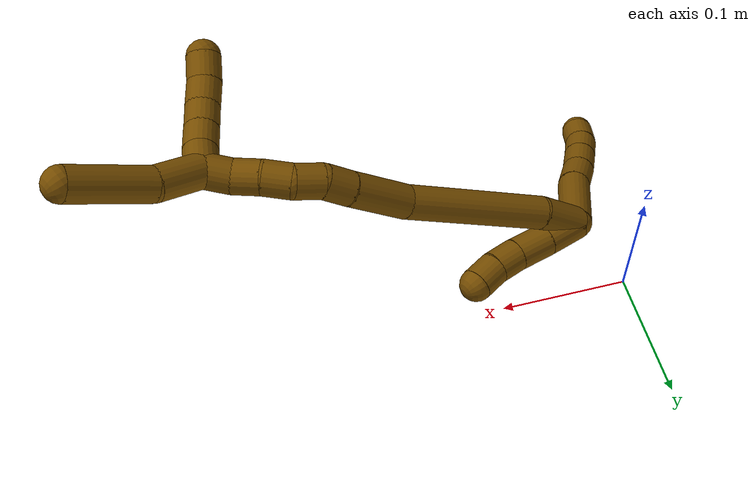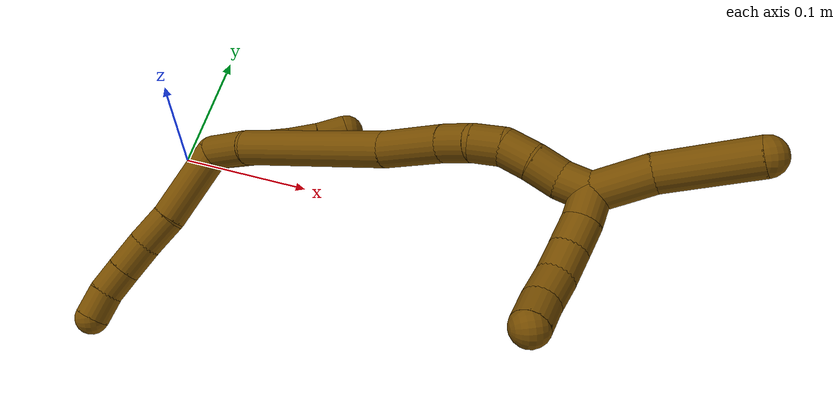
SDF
<sdf version="1.7">
 <world name="default">
  <model name="12">
   <static>0</static>
   <link name="12">
    <collision name="collision-cylinder-e_1_2_8">
     <pose>0.019743 0.009462 -0.018777 -2.67482 0.753933 -2.06008</pose>
     <geometry><cylinder><radius>0.0125</radius><length>0.057684</length></cylinder></geometry>
     <surface>
      <friction><ode><mu>1.16</mu><mu2>1.16</mu2><slip1>0</slip1><slip2>0</slip2></ode></friction>
      <contact><ode><kp>1e+06</kp><kd>1</kd><max_vel>0</max_vel><min_depth>0.001</min_depth></ode></contact>
     </surface>
    </collision>
    <visual name="visual-cylinder-e_1_2_8">
     <pose>0.019743 0.009462 -0.018777 -2.67482 0.753933 -2.06008</pose>
     <geometry><cylinder><radius>0.0125</radius><length>0.057684</length></cylinder></geometry>
     <material><ambient>0.466667 0.301961 0 1</ambient></material>
    </visual>
    <collision name="collision-cylinder-e_2_8_9">
     <pose>0.047008 0.023678 -0.047394 -2.69157 0.602842 -1.87234</pose>
     <geometry><cylinder><radius>0.0125</radius><length>0.026536</length></cylinder></geometry>
     <surface>
      <friction><ode><mu>1.16</mu><mu2>1.16</mu2><slip1>0</slip1><slip2>0</slip2></ode></friction>
      <contact><ode><kp>1e+06</kp><kd>1</kd><max_vel>0</max_vel><min_depth>0.001</min_depth></ode></contact>
     </surface>
    </collision>
    <visual name="visual-cylinder-e_2_8_9">
     <pose>0.047008 0.023678 -0.047394 -2.69157 0.602842 -1.87234</pose>
     <geometry><cylinder><radius>0.0125</radius><length>0.026536</length></cylinder></geometry>
     <material><ambient>0.466667 0.301961 0 1</ambient></material>
    </visual>
    <collision name="collision-cylinder-e_3_9_10">
     <pose>0.062202 0.032148 -0.06584 -2.73396 0.685862 -2.09208</pose>
     <geometry><cylinder><radius>0.0125</radius><length>0.024224</length></cylinder></geometry>
     <surface>
      <friction><ode><mu>1.16</mu><mu2>1.16</mu2><slip1>0</slip1><slip2>0</slip2></ode></friction>
      <contact><ode><kp>1e+06</kp><kd>1</kd><max_vel>0</max_vel><min_depth>0.001</min_depth></ode></contact>
     </surface>
    </collision>
    <visual name="visual-cylinder-e_3_9_10">
     <pose>0.062202 0.032148 -0.06584 -2.73396 0.685862 -2.09208</pose>
     <geometry><cylinder><radius>0.0125</radius><length>0.024224</length></cylinder></geometry>
     <material><ambient>0.466667 0.301961 0 1</ambient></material>
    </visual>
    <collision name="collision-cylinder-e_4_10_11">
     <pose>0.07657 0.039043 -0.081696 -2.72837 0.702129 -2.10196</pose>
     <geometry><cylinder><radius>0.0125</radius><length>0.020739</length></cylinder></geometry>
     <surface>
      <friction><ode><mu>1.16</mu><mu2>1.16</mu2><slip1>0</slip1><slip2>0</slip2></ode></friction>
      <contact><ode><kp>1e+06</kp><kd>1</kd><max_vel>0</max_vel><min_depth>0.001</min_depth></ode></contact>
     </surface>
    </collision>
    <visual name="visual-cylinder-e_4_10_11">
     <pose>0.07657 0.039043 -0.081696 -2.72837 0.702129 -2.10196</pose>
     <geometry><cylinder><radius>0.0125</radius><length>0.020739</length></cylinder></geometry>
     <material><ambient>0.466667 0.301961 0 1</ambient></material>
    </visual>
    <collision name="collision-cylinder-e_5_11_6">
     <pose>0.091372 0.045022 -0.094847 -2.6985 0.892524 -2.2616</pose>
     <geometry><cylinder><radius>0.0125</radius><length>0.020817</length></cylinder></geometry>
     <surface>
      <friction><ode><mu>1.16</mu><mu2>1.16</mu2><slip1>0</slip1><slip2>0</slip2></ode></friction>
      <contact><ode><kp>1e+06</kp><kd>1</kd><max_vel>0</max_vel><min_depth>0.001</min_depth></ode></contact>
     </surface>
    </collision>
    <visual name="visual-cylinder-e_5_11_6">
     <pose>0.091372 0.045022 -0.094847 -2.6985 0.892524 -2.2616</pose>
     <geometry><cylinder><radius>0.0125</radius><length>0.020817</length></cylinder></geometry>
     <material><ambient>0.466667 0.301961 0 1</ambient></material>
    </visual>
    <collision name="collision-cylinder-e_1_2_12">
     <pose>0.001024 -0.001881 0.015035 0.124452 0.067448 0.004204</pose>
     <geometry><cylinder><radius>0.0125</radius><length>0.030374</length></cylinder></geometry>
     <surface>
      <friction><ode><mu>1.16</mu><mu2>1.16</mu2><slip1>0</slip1><slip2>0</slip2></ode></friction>
      <contact><ode><kp>1e+06</kp><kd>1</kd><max_vel>0</max_vel><min_depth>0.001</min_depth></ode></contact>
     </surface>
    </collision>
    <visual name="visual-cylinder-e_1_2_12">
     <pose>0.001024 -0.001881 0.015035 0.124452 0.067448 0.004204</pose>
     <geometry><cylinder><radius>0.0125</radius><length>0.030374</length></cylinder></geometry>
     <material><ambient>0.466667 0.301961 0 1</ambient></material>
    </visual>
    <collision name="collision-cylinder-e_2_12_13">
     <pose>0.003292 -0.006049 0.043899 0.16389 0.088604 0.007282</pose>
     <geometry><cylinder><radius>0.0125</radius><length>0.028143</length></cylinder></geometry>
     <surface>
      <friction><ode><mu>1.16</mu><mu2>1.16</mu2><slip1>0</slip1><slip2>0</slip2></ode></friction>
      <contact><ode><kp>1e+06</kp><kd>1</kd><max_vel>0</max_vel><min_depth>0.001</min_depth></ode></contact>
     </surface>
    </collision>
    <visual name="visual-cylinder-e_2_12_13">
     <pose>0.003292 -0.006049 0.043899 0.16389 0.088604 0.007282</pose>
     <geometry><cylinder><radius>0.0125</radius><length>0.028143</length></cylinder></geometry>
     <material><ambient>0.466667 0.301961 0 1</ambient></material>
    </visual>
    <collision name="collision-cylinder-e_3_13_14">
     <pose>0.004515 -0.009938 0.068144 0.152683 -0.002086 -0.00016</pose>
     <geometry><cylinder><radius>0.0125</radius><length>0.021078</length></cylinder></geometry>
     <surface>
      <friction><ode><mu>1.16</mu><mu2>1.16</mu2><slip1>0</slip1><slip2>0</slip2></ode></friction>
      <contact><ode><kp>1e+06</kp><kd>1</kd><max_vel>0</max_vel><min_depth>0.001</min_depth></ode></contact>
     </surface>
    </collision>
    <visual name="visual-cylinder-e_3_13_14">
     <pose>0.004515 -0.009938 0.068144 0.152683 -0.002086 -0.00016</pose>
     <geometry><cylinder><radius>0.0125</radius><length>0.021078</length></cylinder></geometry>
     <material><ambient>0.466667 0.301961 0 1</ambient></material>
    </visual>
    <collision name="collision-cylinder-e_4_14_5">
     <pose>0.002966 -0.012371 0.088613 0.082355 -0.150276 -0.006203</pose>
     <geometry><cylinder><radius>0.0125</radius><length>0.020405</length></cylinder></geometry>
     <surface>
      <friction><ode><mu>1.16</mu><mu2>1.16</mu2><slip1>0</slip1><slip2>0</slip2></ode></friction>
      <contact><ode><kp>1e+06</kp><kd>1</kd><max_vel>0</max_vel><min_depth>0.001</min_depth></ode></contact>
     </surface>
    </collision>
    <visual name="visual-cylinder-e_4_14_5">
     <pose>0.002966 -0.012371 0.088613 0.082355 -0.150276 -0.006203</pose>
     <geometry><cylinder><radius>0.0125</radius><length>0.020405</length></cylinder></geometry>
     <material><ambient>0.466667 0.301961 0 1</ambient></material>
    </visual>
    <collision name="collision-cylinder-e_1_2_15">
     <pose>0.005328 -0.012207 0.01269 0.765978 0.293817 0.119092</pose>
     <geometry><cylinder><radius>0.0125</radius><length>0.036793</length></cylinder></geometry>
     <surface>
      <friction><ode><mu>1.16</mu><mu2>1.16</mu2><slip1>0</slip1><slip2>0</slip2></ode></friction>
      <contact><ode><kp>1e+06</kp><kd>1</kd><max_vel>0</max_vel><min_depth>0.001</min_depth></ode></contact>
     </surface>
    </collision>
    <visual name="visual-cylinder-e_1_2_15">
     <pose>0.005328 -0.012207 0.01269 0.765978 0.293817 0.119092</pose>
     <geometry><cylinder><radius>0.0125</radius><length>0.036793</length></cylinder></geometry>
     <material><ambient>0.466667 0.301961 0 1</ambient></material>
    </visual>
    <collision name="collision-cylinder-e_2_15_16">
     <pose>0.030239 -0.052181 0.070536 0.551331 0.353885 0.101074</pose>
     <geometry><cylinder><radius>0.0125</radius><length>0.113024</length></cylinder></geometry>
     <surface>
      <friction><ode><mu>1.16</mu><mu2>1.16</mu2><slip1>0</slip1><slip2>0</slip2></ode></friction>
      <contact><ode><kp>1e+06</kp><kd>1</kd><max_vel>0</max_vel><min_depth>0.001</min_depth></ode></contact>
     </surface>
    </collision>
    <visual name="visual-cylinder-e_2_15_16">
     <pose>0.030239 -0.052181 0.070536 0.551331 0.353885 0.101074</pose>
     <geometry><cylinder><radius>0.0125</radius><length>0.113024</length></cylinder></geometry>
     <material><ambient>0.466667 0.301961 0 1</ambient></material>
    </visual>
    <collision name="collision-cylinder-e_3_16_17">
     <pose>0.056907 -0.094918 0.132431 0.729603 0.305568 0.117476</pose>
     <geometry><cylinder><radius>0.0125</radius><length>0.047094</length></cylinder></geometry>
     <surface>
      <friction><ode><mu>1.16</mu><mu2>1.16</mu2><slip1>0</slip1><slip2>0</slip2></ode></friction>
      <contact><ode><kp>1e+06</kp><kd>1</kd><max_vel>0</max_vel><min_depth>0.001</min_depth></ode></contact>
     </surface>
    </collision>
    <visual name="visual-cylinder-e_3_16_17">
     <pose>0.056907 -0.094918 0.132431 0.729603 0.305568 0.117476</pose>
     <geometry><cylinder><radius>0.0125</radius><length>0.047094</length></cylinder></geometry>
     <material><ambient>0.466667 0.301961 0 1</ambient></material>
    </visual>
    <collision name="collision-cylinder-e_4_17_18">
     <pose>0.067944 -0.116544 0.156465 0.73979 0.380739 0.149161</pose>
     <geometry><cylinder><radius>0.0125</radius><length>0.021275</length></cylinder></geometry>
     <surface>
      <friction><ode><mu>1.16</mu><mu2>1.16</mu2><slip1>0</slip1><slip2>0</slip2></ode></friction>
      <contact><ode><kp>1e+06</kp><kd>1</kd><max_vel>0</max_vel><min_depth>0.001</min_depth></ode></contact>
     </surface>
    </collision>
    <visual name="visual-cylinder-e_4_17_18">
     <pose>0.067944 -0.116544 0.156465 0.73979 0.380739 0.149161</pose>
     <geometry><cylinder><radius>0.0125</radius><length>0.021275</length></cylinder></geometry>
     <material><ambient>0.466667 0.301961 0 1</ambient></material>
    </visual>
    <collision name="collision-cylinder-e_5_18_19">
     <pose>0.076114 -0.126784 0.17258 0.385788 0.416966 0.082597</pose>
     <geometry><cylinder><radius>0.0125</radius><length>0.020824</length></cylinder></geometry>
     <surface>
      <friction><ode><mu>1.16</mu><mu2>1.16</mu2><slip1>0</slip1><slip2>0</slip2></ode></friction>
      <contact><ode><kp>1e+06</kp><kd>1</kd><max_vel>0</max_vel><min_depth>0.001</min_depth></ode></contact>
     </surface>
    </collision>
    <visual name="visual-cylinder-e_5_18_19">
     <pose>0.076114 -0.126784 0.17258 0.385788 0.416966 0.082597</pose>
     <geometry><cylinder><radius>0.0125</radius><length>0.020824</length></cylinder></geometry>
     <material><ambient>0.466667 0.301961 0 1</ambient></material>
    </visual>
    <collision name="collision-cylinder-e_6_19_20">
     <pose>0.087333 -0.132554 0.18847 0.300159 0.757812 0.120267</pose>
     <geometry><cylinder><radius>0.0125</radius><length>0.020377</length></cylinder></geometry>
     <surface>
      <friction><ode><mu>1.16</mu><mu2>1.16</mu2><slip1>0</slip1><slip2>0</slip2></ode></friction>
      <contact><ode><kp>1e+06</kp><kd>1</kd><max_vel>0</max_vel><min_depth>0.001</min_depth></ode></contact>
     </surface>
    </collision>
    <visual name="visual-cylinder-e_6_19_20">
     <pose>0.087333 -0.132554 0.18847 0.300159 0.757812 0.120267</pose>
     <geometry><cylinder><radius>0.0125</radius><length>0.020377</length></cylinder></geometry>
     <material><ambient>0.466667 0.301961 0 1</ambient></material>
    </visual>
    <collision name="collision-cylinder-e_7_20_21">
     <pose>0.101544 -0.135402 0.202687 0.092054 0.787437 0.038262</pose>
     <geometry><cylinder><radius>0.0125</radius><length>0.020346</length></cylinder></geometry>
     <surface>
      <friction><ode><mu>1.16</mu><mu2>1.16</mu2><slip1>0</slip1><slip2>0</slip2></ode></friction>
      <contact><ode><kp>1e+06</kp><kd>1</kd><max_vel>0</max_vel><min_depth>0.001</min_depth></ode></contact>
     </surface>
    </collision>
    <visual name="visual-cylinder-e_7_20_21">
     <pose>0.101544 -0.135402 0.202687 0.092054 0.787437 0.038262</pose>
     <geometry><cylinder><radius>0.0125</radius><length>0.020346</length></cylinder></geometry>
     <material><ambient>0.466667 0.301961 0 1</ambient></material>
    </visual>
    <collision name="collision-cylinder-e_8_21_1">
     <pose>0.11523 -0.13956 0.2168 0.465475 0.693462 0.170876</pose>
     <geometry><cylinder><radius>0.0125</radius><length>0.020267</length></cylinder></geometry>
     <surface>
      <friction><ode><mu>1.16</mu><mu2>1.16</mu2><slip1>0</slip1><slip2>0</slip2></ode></friction>
      <contact><ode><kp>1e+06</kp><kd>1</kd><max_vel>0</max_vel><min_depth>0.001</min_depth></ode></contact>
     </surface>
    </collision>
    <visual name="visual-cylinder-e_8_21_1">
     <pose>0.11523 -0.13956 0.2168 0.465475 0.693462 0.170876</pose>
     <geometry><cylinder><radius>0.0125</radius><length>0.020267</length></cylinder></geometry>
     <material><ambient>0.466667 0.301961 0 1</ambient></material>
    </visual>
    <collision name="collision-cylinder-e_1_1_22">
     <pose>0.130369 -0.141985 0.218883 -2.92515 1.04749 -2.7697</pose>
     <geometry><cylinder><radius>0.0125</radius><length>0.02</length></cylinder></geometry>
     <surface>
      <friction><ode><mu>1.16</mu><mu2>1.16</mu2><slip1>0</slip1><slip2>0</slip2></ode></friction>
      <contact><ode><kp>1e+06</kp><kd>1</kd><max_vel>0</max_vel><min_depth>0.001</min_depth></ode></contact>
     </surface>
    </collision>
    <visual name="visual-cylinder-e_1_1_22">
     <pose>0.130369 -0.141985 0.218883 -2.92515 1.04749 -2.7697</pose>
     <geometry><cylinder><radius>0.0125</radius><length>0.02</length></cylinder></geometry>
     <material><ambient>0.466667 0.301961 0 1</ambient></material>
    </visual>
    <collision name="collision-cylinder-e_2_22_23">
     <pose>0.147071 -0.141246 0.208066 3.08525 0.934159 3.02996</pose>
     <geometry><cylinder><radius>0.0125</radius><length>0.02</length></cylinder></geometry>
     <surface>
      <friction><ode><mu>1.16</mu><mu2>1.16</mu2><slip1>0</slip1><slip2>0</slip2></ode></friction>
      <contact><ode><kp>1e+06</kp><kd>1</kd><max_vel>0</max_vel><min_depth>0.001</min_depth></ode></contact>
     </surface>
    </collision>
    <visual name="visual-cylinder-e_2_22_23">
     <pose>0.147071 -0.141246 0.208066 3.08525 0.934159 3.02996</pose>
     <geometry><cylinder><radius>0.0125</radius><length>0.02</length></cylinder></geometry>
     <material><ambient>0.466667 0.301961 0 1</ambient></material>
    </visual>
    <collision name="collision-cylinder-e_3_23_24">
     <pose>0.163081 -0.142399 0.196144 3.00577 0.922016 2.86942</pose>
     <geometry><cylinder><radius>0.0125</radius><length>0.02</length></cylinder></geometry>
     <surface>
      <friction><ode><mu>1.16</mu><mu2>1.16</mu2><slip1>0</slip1><slip2>0</slip2></ode></friction>
      <contact><ode><kp>1e+06</kp><kd>1</kd><max_vel>0</max_vel><min_depth>0.001</min_depth></ode></contact>
     </surface>
    </collision>
    <visual name="visual-cylinder-e_3_23_24">
     <pose>0.163081 -0.142399 0.196144 3.00577 0.922016 2.86942</pose>
     <geometry><cylinder><radius>0.0125</radius><length>0.02</length></cylinder></geometry>
     <material><ambient>0.466667 0.301961 0 1</ambient></material>
    </visual>
    <collision name="collision-cylinder-e_4_24_25">
     <pose>0.178294 -0.145865 0.183794 2.74724 0.810327 2.2698</pose>
     <geometry><cylinder><radius>0.0125</radius><length>0.02</length></cylinder></geometry>
     <surface>
      <friction><ode><mu>1.16</mu><mu2>1.16</mu2><slip1>0</slip1><slip2>0</slip2></ode></friction>
      <contact><ode><kp>1e+06</kp><kd>1</kd><max_vel>0</max_vel><min_depth>0.001</min_depth></ode></contact>
     </surface>
    </collision>
    <visual name="visual-cylinder-e_4_24_25">
     <pose>0.178294 -0.145865 0.183794 2.74724 0.810327 2.2698</pose>
     <geometry><cylinder><radius>0.0125</radius><length>0.02</length></cylinder></geometry>
     <material><ambient>0.466667 0.301961 0 1</ambient></material>
    </visual>
    <collision name="collision-cylinder-e_5_25_4">
     <pose>0.192822 -0.152451 0.171822 2.52951 0.81584 1.87896</pose>
     <geometry><cylinder><radius>0.0125</radius><length>0.02</length></cylinder></geometry>
     <surface>
      <friction><ode><mu>1.16</mu><mu2>1.16</mu2><slip1>0</slip1><slip2>0</slip2></ode></friction>
      <contact><ode><kp>1e+06</kp><kd>1</kd><max_vel>0</max_vel><min_depth>0.001</min_depth></ode></contact>
     </surface>
    </collision>
    <visual name="visual-cylinder-e_5_25_4">
     <pose>0.192822 -0.152451 0.171822 2.52951 0.81584 1.87896</pose>
     <geometry><cylinder><radius>0.0125</radius><length>0.02</length></cylinder></geometry>
     <material><ambient>0.466667 0.301961 0 1</ambient></material>
    </visual>
    <collision name="collision-cylinder-e_1_1_26">
     <pose>0.120986 -0.150615 0.241046 0.412193 -0.038211 -0.007989</pose>
     <geometry><cylinder><radius>0.0125</radius><length>0.037752</length></cylinder></geometry>
     <surface>
      <friction><ode><mu>1.16</mu><mu2>1.16</mu2><slip1>0</slip1><slip2>0</slip2></ode></friction>
      <contact><ode><kp>1e+06</kp><kd>1</kd><max_vel>0</max_vel><min_depth>0.001</min_depth></ode></contact>
     </surface>
    </collision>
    <visual name="visual-cylinder-e_1_1_26">
     <pose>0.120986 -0.150615 0.241046 0.412193 -0.038211 -0.007989</pose>
     <geometry><cylinder><radius>0.0125</radius><length>0.037752</length></cylinder></geometry>
     <material><ambient>0.466667 0.301961 0 1</ambient></material>
    </visual>
    <collision name="collision-cylinder-e_2_26_3">
     <pose>0.125792 -0.174787 0.284059 0.573411 0.178544 0.052768</pose>
     <geometry><cylinder><radius>0.0125</radius><length>0.062248</length></cylinder></geometry>
     <surface>
      <friction><ode><mu>1.16</mu><mu2>1.16</mu2><slip1>0</slip1><slip2>0</slip2></ode></friction>
      <contact><ode><kp>1e+06</kp><kd>1</kd><max_vel>0</max_vel><min_depth>0.001</min_depth></ode></contact>
     </surface>
    </collision>
    <visual name="visual-cylinder-e_2_26_3">
     <pose>0.125792 -0.174787 0.284059 0.573411 0.178544 0.052768</pose>
     <geometry><cylinder><radius>0.0125</radius><length>0.062248</length></cylinder></geometry>
     <material><ambient>0.466667 0.301961 0 1</ambient></material>
    </visual>
    <collision name="collision-sphere-3">
     <pose>0.13132 -0.191404 0.309789 0 -0 0</pose>
     <geometry><sphere><radius>0.0125</radius></sphere></geometry>
     <surface>
      <friction><ode><mu>1.16</mu><mu2>1.16</mu2><slip1>0</slip1><slip2>0</slip2></ode></friction>
      <contact><ode><kp>1e+06</kp><kd>1</kd><max_vel>0</max_vel><min_depth>0.001</min_depth></ode></contact>
     </surface>
    </collision>
    <visual name="visual-sphere-3">
     <pose>0.13132 -0.191404 0.309789 0 -0 0</pose>
     <geometry><sphere><radius>0.0125</radius></sphere></geometry>
     <material><ambient>0.466667 0.301961 0 1</ambient></material>
    </visual>
    <collision name="collision-sphere-26">
     <pose>0.120265 -0.158171 0.258329 0 -0 0</pose>
     <geometry><sphere><radius>0.0125</radius></sphere></geometry>
     <surface>
      <friction><ode><mu>1.16</mu><mu2>1.16</mu2><slip1>0</slip1><slip2>0</slip2></ode></friction>
      <contact><ode><kp>1e+06</kp><kd>1</kd><max_vel>0</max_vel><min_depth>0.001</min_depth></ode></contact>
     </surface>
    </collision>
    <visual name="visual-sphere-26">
     <pose>0.120265 -0.158171 0.258329 0 -0 0</pose>
     <geometry><sphere><radius>0.0125</radius></sphere></geometry>
     <material><ambient>0.466667 0.301961 0 1</ambient></material>
    </visual>
    <collision name="collision-sphere-4">
     <pose>0.200105 -0.156388 0.166214 0 -0 0</pose>
     <geometry><sphere><radius>0.0125</radius></sphere></geometry>
     <surface>
      <friction><ode><mu>1.16</mu><mu2>1.16</mu2><slip1>0</slip1><slip2>0</slip2></ode></friction>
      <contact><ode><kp>1e+06</kp><kd>1</kd><max_vel>0</max_vel><min_depth>0.001</min_depth></ode></contact>
     </surface>
    </collision>
    <visual name="visual-sphere-4">
     <pose>0.200105 -0.156388 0.166214 0 -0 0</pose>
     <geometry><sphere><radius>0.0125</radius></sphere></geometry>
     <material><ambient>0.466667 0.301961 0 1</ambient></material>
    </visual>
    <collision name="collision-sphere-25">
     <pose>0.185539 -0.148514 0.177431 0 -0 0</pose>
     <geometry><sphere><radius>0.0125</radius></sphere></geometry>
     <surface>
      <friction><ode><mu>1.16</mu><mu2>1.16</mu2><slip1>0</slip1><slip2>0</slip2></ode></friction>
      <contact><ode><kp>1e+06</kp><kd>1</kd><max_vel>0</max_vel><min_depth>0.001</min_depth></ode></contact>
     </surface>
    </collision>
    <visual name="visual-sphere-25">
     <pose>0.185539 -0.148514 0.177431 0 -0 0</pose>
     <geometry><sphere><radius>0.0125</radius></sphere></geometry>
     <material><ambient>0.466667 0.301961 0 1</ambient></material>
    </visual>
    <collision name="collision-sphere-24">
     <pose>0.171049 -0.143217 0.190158 0 -0 0</pose>
     <geometry><sphere><radius>0.0125</radius></sphere></geometry>
     <surface>
      <friction><ode><mu>1.16</mu><mu2>1.16</mu2><slip1>0</slip1><slip2>0</slip2></ode></friction>
      <contact><ode><kp>1e+06</kp><kd>1</kd><max_vel>0</max_vel><min_depth>0.001</min_depth></ode></contact>
     </surface>
    </collision>
    <visual name="visual-sphere-24">
     <pose>0.171049 -0.143217 0.190158 0 -0 0</pose>
     <geometry><sphere><radius>0.0125</radius></sphere></geometry>
     <material><ambient>0.466667 0.301961 0 1</ambient></material>
    </visual>
    <collision name="collision-sphere-23">
     <pose>0.155112 -0.141581 0.202131 0 -0 0</pose>
     <geometry><sphere><radius>0.0125</radius></sphere></geometry>
     <surface>
      <friction><ode><mu>1.16</mu><mu2>1.16</mu2><slip1>0</slip1><slip2>0</slip2></ode></friction>
      <contact><ode><kp>1e+06</kp><kd>1</kd><max_vel>0</max_vel><min_depth>0.001</min_depth></ode></contact>
     </surface>
    </collision>
    <visual name="visual-sphere-23">
     <pose>0.155112 -0.141581 0.202131 0 -0 0</pose>
     <geometry><sphere><radius>0.0125</radius></sphere></geometry>
     <material><ambient>0.466667 0.301961 0 1</ambient></material>
    </visual>
    <collision name="collision-sphere-22">
     <pose>0.13903 -0.140911 0.214002 0 -0 0</pose>
     <geometry><sphere><radius>0.0125</radius></sphere></geometry>
     <surface>
      <friction><ode><mu>1.16</mu><mu2>1.16</mu2><slip1>0</slip1><slip2>0</slip2></ode></friction>
      <contact><ode><kp>1e+06</kp><kd>1</kd><max_vel>0</max_vel><min_depth>0.001</min_depth></ode></contact>
     </surface>
    </collision>
    <visual name="visual-sphere-22">
     <pose>0.13903 -0.140911 0.214002 0 -0 0</pose>
     <geometry><sphere><radius>0.0125</radius></sphere></geometry>
     <material><ambient>0.466667 0.301961 0 1</ambient></material>
    </visual>
    <collision name="collision-sphere-1">
     <pose>0.121707 -0.143058 0.223764 0 -0 0</pose>
     <geometry><sphere><radius>0.0125</radius></sphere></geometry>
     <surface>
      <friction><ode><mu>1.16</mu><mu2>1.16</mu2><slip1>0</slip1><slip2>0</slip2></ode></friction>
      <contact><ode><kp>1e+06</kp><kd>1</kd><max_vel>0</max_vel><min_depth>0.001</min_depth></ode></contact>
     </surface>
    </collision>
    <visual name="visual-sphere-1">
     <pose>0.121707 -0.143058 0.223764 0 -0 0</pose>
     <geometry><sphere><radius>0.0125</radius></sphere></geometry>
     <material><ambient>0.466667 0.301961 0 1</ambient></material>
    </visual>
    <collision name="collision-sphere-21">
     <pose>0.108752 -0.136062 0.209836 0 -0 0</pose>
     <geometry><sphere><radius>0.0125</radius></sphere></geometry>
     <surface>
      <friction><ode><mu>1.16</mu><mu2>1.16</mu2><slip1>0</slip1><slip2>0</slip2></ode></friction>
      <contact><ode><kp>1e+06</kp><kd>1</kd><max_vel>0</max_vel><min_depth>0.001</min_depth></ode></contact>
     </surface>
    </collision>
    <visual name="visual-sphere-21">
     <pose>0.108752 -0.136062 0.209836 0 -0 0</pose>
     <geometry><sphere><radius>0.0125</radius></sphere></geometry>
     <material><ambient>0.466667 0.301961 0 1</ambient></material>
    </visual>
    <collision name="collision-sphere-6">
     <pose>0.099476 0.047822 -0.100747 0 -0 0</pose>
     <geometry><sphere><radius>0.0125</radius></sphere></geometry>
     <surface>
      <friction><ode><mu>1.16</mu><mu2>1.16</mu2><slip1>0</slip1><slip2>0</slip2></ode></friction>
      <contact><ode><kp>1e+06</kp><kd>1</kd><max_vel>0</max_vel><min_depth>0.001</min_depth></ode></contact>
     </surface>
    </collision>
    <visual name="visual-sphere-6">
     <pose>0.099476 0.047822 -0.100747 0 -0 0</pose>
     <geometry><sphere><radius>0.0125</radius></sphere></geometry>
     <material><ambient>0.466667 0.301961 0 1</ambient></material>
    </visual>
    <collision name="collision-sphere-11">
     <pose>0.083267 0.042222 -0.088946 0 -0 0</pose>
     <geometry><sphere><radius>0.0125</radius></sphere></geometry>
     <surface>
      <friction><ode><mu>1.16</mu><mu2>1.16</mu2><slip1>0</slip1><slip2>0</slip2></ode></friction>
      <contact><ode><kp>1e+06</kp><kd>1</kd><max_vel>0</max_vel><min_depth>0.001</min_depth></ode></contact>
     </surface>
    </collision>
    <visual name="visual-sphere-11">
     <pose>0.083267 0.042222 -0.088946 0 -0 0</pose>
     <geometry><sphere><radius>0.0125</radius></sphere></geometry>
     <material><ambient>0.466667 0.301961 0 1</ambient></material>
    </visual>
    <collision name="collision-sphere-10">
     <pose>0.069873 0.035863 -0.074445 0 -0 0</pose>
     <geometry><sphere><radius>0.0125</radius></sphere></geometry>
     <surface>
      <friction><ode><mu>1.16</mu><mu2>1.16</mu2><slip1>0</slip1><slip2>0</slip2></ode></friction>
      <contact><ode><kp>1e+06</kp><kd>1</kd><max_vel>0</max_vel><min_depth>0.001</min_depth></ode></contact>
     </surface>
    </collision>
    <visual name="visual-sphere-10">
     <pose>0.069873 0.035863 -0.074445 0 -0 0</pose>
     <geometry><sphere><radius>0.0125</radius></sphere></geometry>
     <material><ambient>0.466667 0.301961 0 1</ambient></material>
    </visual>
    <collision name="collision-sphere-9">
     <pose>0.054531 0.028432 -0.057235 0 -0 0</pose>
     <geometry><sphere><radius>0.0125</radius></sphere></geometry>
     <surface>
      <friction><ode><mu>1.16</mu><mu2>1.16</mu2><slip1>0</slip1><slip2>0</slip2></ode></friction>
      <contact><ode><kp>1e+06</kp><kd>1</kd><max_vel>0</max_vel><min_depth>0.001</min_depth></ode></contact>
     </surface>
    </collision>
    <visual name="visual-sphere-9">
     <pose>0.054531 0.028432 -0.057235 0 -0 0</pose>
     <geometry><sphere><radius>0.0125</radius></sphere></geometry>
     <material><ambient>0.466667 0.301961 0 1</ambient></material>
    </visual>
    <collision name="collision-sphere-2">
     <geometry><sphere><radius>0.0125</radius></sphere></geometry>
     <surface>
      <friction><ode><mu>1.16</mu><mu2>1.16</mu2><slip1>0</slip1><slip2>0</slip2></ode></friction>
      <contact><ode><kp>1e+06</kp><kd>1</kd><max_vel>0</max_vel><min_depth>0.001</min_depth></ode></contact>
     </surface>
    </collision>
    <visual name="visual-sphere-2">
     <geometry><sphere><radius>0.0125</radius></sphere></geometry>
     <material><ambient>0.466667 0.301961 0 1</ambient></material>
    </visual>
    <collision name="collision-sphere-19">
     <pose>0.08033 -0.130366 0.1814 0 -0 0</pose>
     <geometry><sphere><radius>0.0125</radius></sphere></geometry>
     <surface>
      <friction><ode><mu>1.16</mu><mu2>1.16</mu2><slip1>0</slip1><slip2>0</slip2></ode></friction>
      <contact><ode><kp>1e+06</kp><kd>1</kd><max_vel>0</max_vel><min_depth>0.001</min_depth></ode></contact>
     </surface>
    </collision>
    <visual name="visual-sphere-19">
     <pose>0.08033 -0.130366 0.1814 0 -0 0</pose>
     <geometry><sphere><radius>0.0125</radius></sphere></geometry>
     <material><ambient>0.466667 0.301961 0 1</ambient></material>
    </visual>
    <collision name="collision-sphere-8">
     <pose>0.039485 0.018924 -0.037553 0 -0 0</pose>
     <geometry><sphere><radius>0.0125</radius></sphere></geometry>
     <surface>
      <friction><ode><mu>1.16</mu><mu2>1.16</mu2><slip1>0</slip1><slip2>0</slip2></ode></friction>
      <contact><ode><kp>1e+06</kp><kd>1</kd><max_vel>0</max_vel><min_depth>0.001</min_depth></ode></contact>
     </surface>
    </collision>
    <visual name="visual-sphere-8">
     <pose>0.039485 0.018924 -0.037553 0 -0 0</pose>
     <geometry><sphere><radius>0.0125</radius></sphere></geometry>
     <material><ambient>0.466667 0.301961 0 1</ambient></material>
    </visual>
    <collision name="collision-sphere-12">
     <pose>0.002047 -0.003762 0.03007 0 -0 0</pose>
     <geometry><sphere><radius>0.0125</radius></sphere></geometry>
     <surface>
      <friction><ode><mu>1.16</mu><mu2>1.16</mu2><slip1>0</slip1><slip2>0</slip2></ode></friction>
      <contact><ode><kp>1e+06</kp><kd>1</kd><max_vel>0</max_vel><min_depth>0.001</min_depth></ode></contact>
     </surface>
    </collision>
    <visual name="visual-sphere-12">
     <pose>0.002047 -0.003762 0.03007 0 -0 0</pose>
     <geometry><sphere><radius>0.0125</radius></sphere></geometry>
     <material><ambient>0.466667 0.301961 0 1</ambient></material>
    </visual>
    <collision name="collision-sphere-13">
     <pose>0.004537 -0.008336 0.057728 0 -0 0</pose>
     <geometry><sphere><radius>0.0125</radius></sphere></geometry>
     <surface>
      <friction><ode><mu>1.16</mu><mu2>1.16</mu2><slip1>0</slip1><slip2>0</slip2></ode></friction>
      <contact><ode><kp>1e+06</kp><kd>1</kd><max_vel>0</max_vel><min_depth>0.001</min_depth></ode></contact>
     </surface>
    </collision>
    <visual name="visual-sphere-13">
     <pose>0.004537 -0.008336 0.057728 0 -0 0</pose>
     <geometry><sphere><radius>0.0125</radius></sphere></geometry>
     <material><ambient>0.466667 0.301961 0 1</ambient></material>
    </visual>
    <collision name="collision-sphere-14">
     <pose>0.004493 -0.011541 0.07856 0 -0 0</pose>
     <geometry><sphere><radius>0.0125</radius></sphere></geometry>
     <surface>
      <friction><ode><mu>1.16</mu><mu2>1.16</mu2><slip1>0</slip1><slip2>0</slip2></ode></friction>
      <contact><ode><kp>1e+06</kp><kd>1</kd><max_vel>0</max_vel><min_depth>0.001</min_depth></ode></contact>
     </surface>
    </collision>
    <visual name="visual-sphere-14">
     <pose>0.004493 -0.011541 0.07856 0 -0 0</pose>
     <geometry><sphere><radius>0.0125</radius></sphere></geometry>
     <material><ambient>0.466667 0.301961 0 1</ambient></material>
    </visual>
    <collision name="collision-sphere-5">
     <pose>0.001439 -0.013201 0.098667 0 -0 0</pose>
     <geometry><sphere><radius>0.0125</radius></sphere></geometry>
     <surface>
      <friction><ode><mu>1.16</mu><mu2>1.16</mu2><slip1>0</slip1><slip2>0</slip2></ode></friction>
      <contact><ode><kp>1e+06</kp><kd>1</kd><max_vel>0</max_vel><min_depth>0.001</min_depth></ode></contact>
     </surface>
    </collision>
    <visual name="visual-sphere-5">
     <pose>0.001439 -0.013201 0.098667 0 -0 0</pose>
     <geometry><sphere><radius>0.0125</radius></sphere></geometry>
     <material><ambient>0.466667 0.301961 0 1</ambient></material>
    </visual>
    <collision name="collision-sphere-15">
     <pose>0.010656 -0.024413 0.02538 0 -0 0</pose>
     <geometry><sphere><radius>0.0125</radius></sphere></geometry>
     <surface>
      <friction><ode><mu>1.16</mu><mu2>1.16</mu2><slip1>0</slip1><slip2>0</slip2></ode></friction>
      <contact><ode><kp>1e+06</kp><kd>1</kd><max_vel>0</max_vel><min_depth>0.001</min_depth></ode></contact>
     </surface>
    </collision>
    <visual name="visual-sphere-15">
     <pose>0.010656 -0.024413 0.02538 0 -0 0</pose>
     <geometry><sphere><radius>0.0125</radius></sphere></geometry>
     <material><ambient>0.466667 0.301961 0 1</ambient></material>
    </visual>
    <collision name="collision-sphere-16">
     <pose>0.049823 -0.079949 0.115691 0 -0 0</pose>
     <geometry><sphere><radius>0.0125</radius></sphere></geometry>
     <surface>
      <friction><ode><mu>1.16</mu><mu2>1.16</mu2><slip1>0</slip1><slip2>0</slip2></ode></friction>
      <contact><ode><kp>1e+06</kp><kd>1</kd><max_vel>0</max_vel><min_depth>0.001</min_depth></ode></contact>
     </surface>
    </collision>
    <visual name="visual-sphere-16">
     <pose>0.049823 -0.079949 0.115691 0 -0 0</pose>
     <geometry><sphere><radius>0.0125</radius></sphere></geometry>
     <material><ambient>0.466667 0.301961 0 1</ambient></material>
    </visual>
    <collision name="collision-sphere-17">
     <pose>0.063991 -0.109886 0.149171 0 -0 0</pose>
     <geometry><sphere><radius>0.0125</radius></sphere></geometry>
     <surface>
      <friction><ode><mu>1.16</mu><mu2>1.16</mu2><slip1>0</slip1><slip2>0</slip2></ode></friction>
      <contact><ode><kp>1e+06</kp><kd>1</kd><max_vel>0</max_vel><min_depth>0.001</min_depth></ode></contact>
     </surface>
    </collision>
    <visual name="visual-sphere-17">
     <pose>0.063991 -0.109886 0.149171 0 -0 0</pose>
     <geometry><sphere><radius>0.0125</radius></sphere></geometry>
     <material><ambient>0.466667 0.301961 0 1</ambient></material>
    </visual>
    <collision name="collision-sphere-18">
     <pose>0.071897 -0.123202 0.16376 0 -0 0</pose>
     <geometry><sphere><radius>0.0125</radius></sphere></geometry>
     <surface>
      <friction><ode><mu>1.16</mu><mu2>1.16</mu2><slip1>0</slip1><slip2>0</slip2></ode></friction>
      <contact><ode><kp>1e+06</kp><kd>1</kd><max_vel>0</max_vel><min_depth>0.001</min_depth></ode></contact>
     </surface>
    </collision>
    <visual name="visual-sphere-18">
     <pose>0.071897 -0.123202 0.16376 0 -0 0</pose>
     <geometry><sphere><radius>0.0125</radius></sphere></geometry>
     <material><ambient>0.466667 0.301961 0 1</ambient></material>
    </visual>
    <collision name="collision-sphere-20">
     <pose>0.094336 -0.134742 0.195539 0 -0 0</pose>
     <geometry><sphere><radius>0.0125</radius></sphere></geometry>
     <surface>
      <friction><ode><mu>1.16</mu><mu2>1.16</mu2><slip1>0</slip1><slip2>0</slip2></ode></friction>
      <contact><ode><kp>1e+06</kp><kd>1</kd><max_vel>0</max_vel><min_depth>0.001</min_depth></ode></contact>
     </surface>
    </collision>
    <visual name="visual-sphere-20">
     <pose>0.094336 -0.134742 0.195539 0 -0 0</pose>
     <geometry><sphere><radius>0.0125</radius></sphere></geometry>
     <material><ambient>0.466667 0.301961 0 1</ambient></material>
    </visual>
    <inertial>
     <pose>0.069064 -0.069674 0.103527 0 -0 0</pose>
     <mass>0.75</mass>
     <inertia>
      <ixx>0.000188</ixx>
      <ixy>0</ixy>
      <ixz>0</ixz>
      <iyy>0.000172</iyy>
      <iyz>0</iyz>
      <izz>2.2e-05</izz>
     </inertia>
    </inertial>
   </link>
   <pose>0.040468 -0.022734 0.063754 -1.62257 0.128747 -1.13951</pose>
  </model>
 </world>
</sdf>
